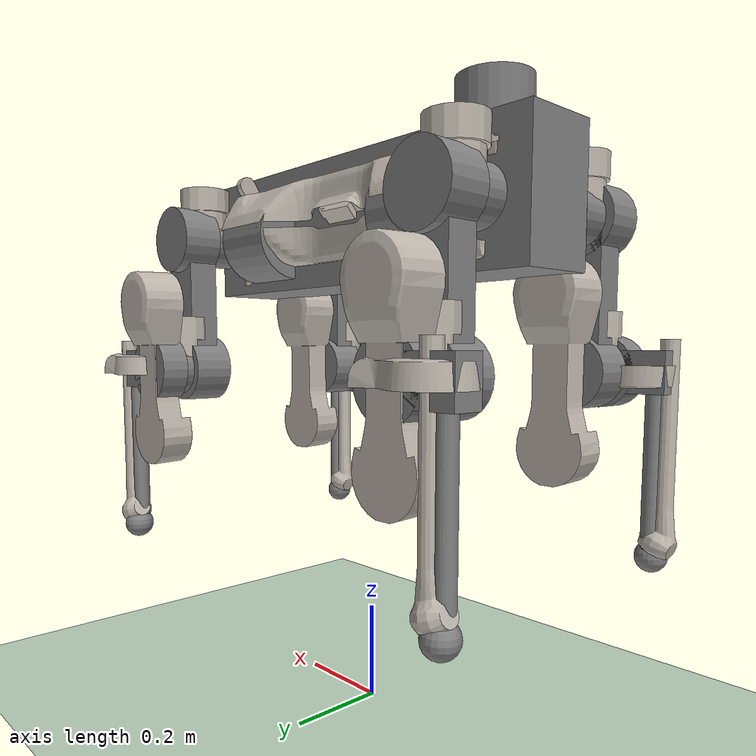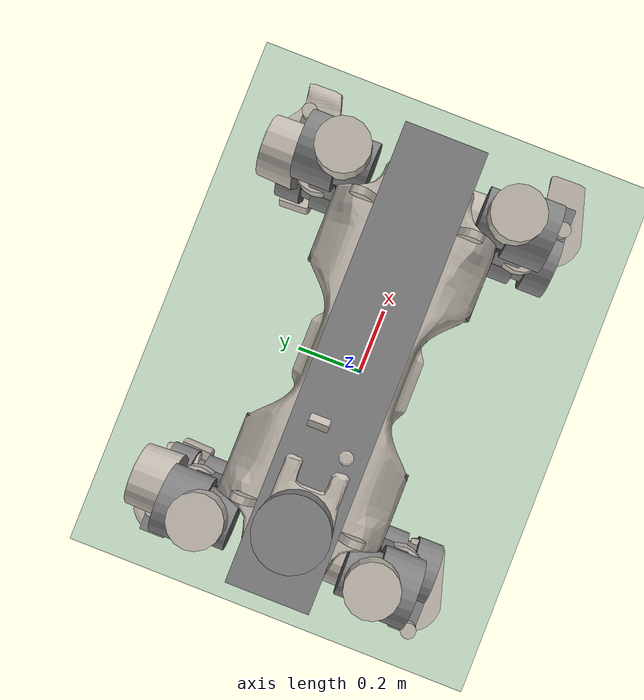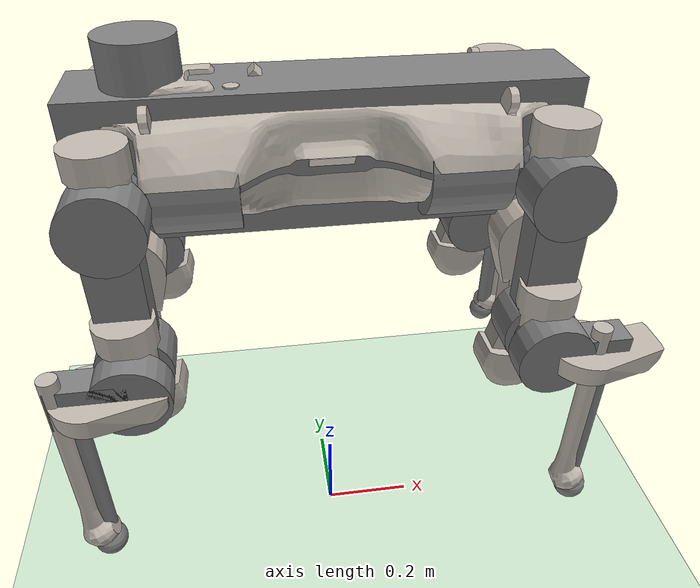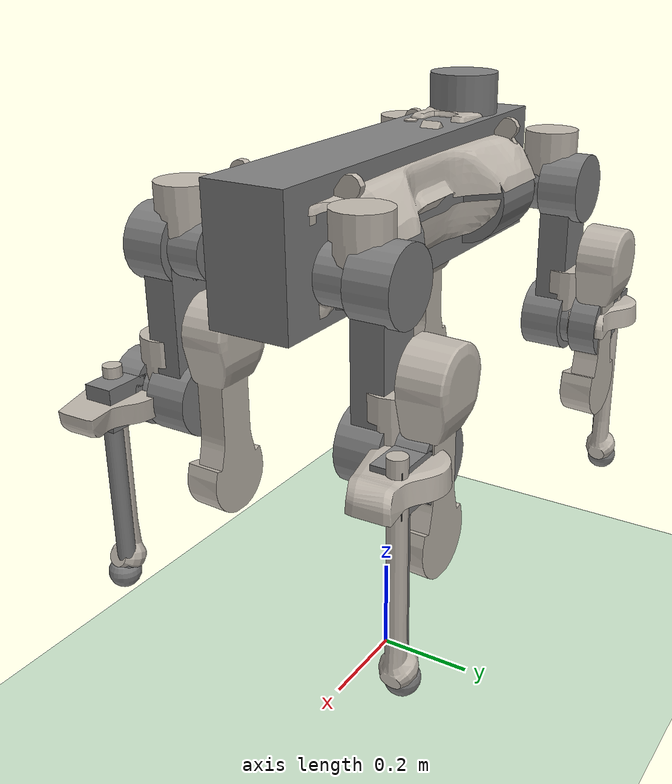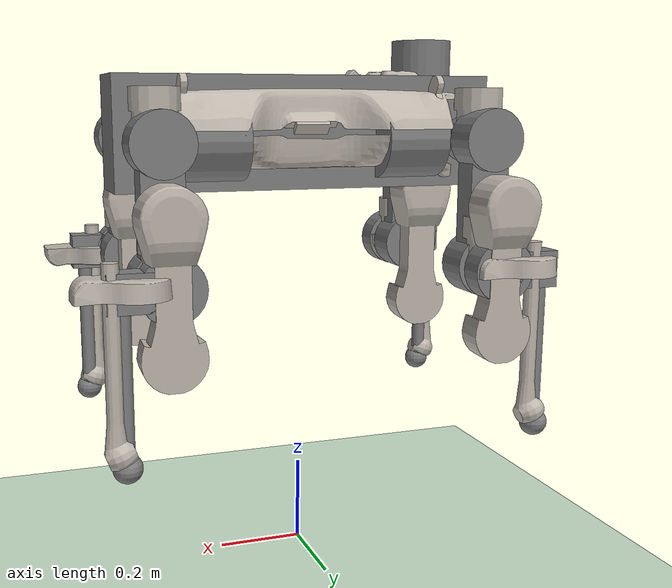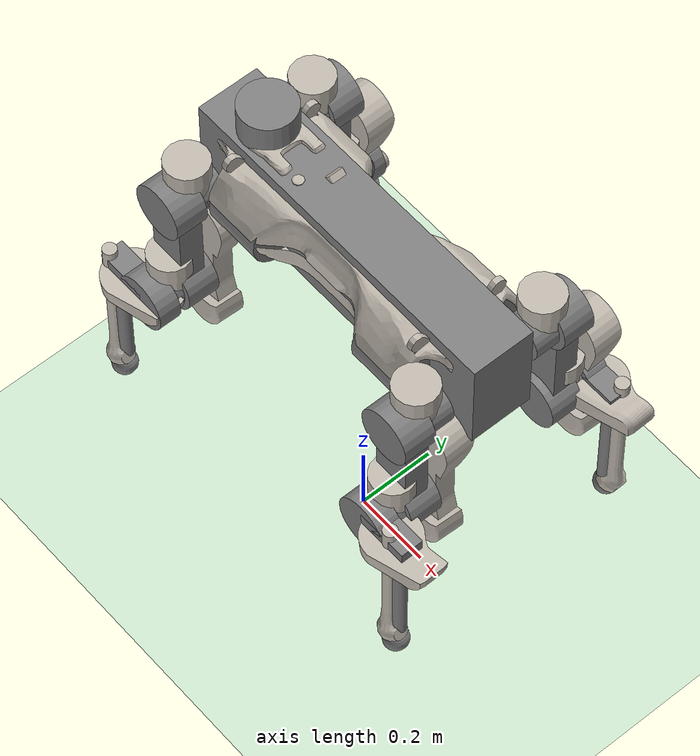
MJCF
<mujoco model="anymal">
    <compiler angle="radian" discardvisual="true" inertiafromgeom="true" meshdir="../assets/meshes_anymal_d/" texturedir="../assets/meshes_anymal_d/"/>

    <size njmax="500" nconmax="100" />
    <asset>
        <texture builtin="checker" height="100" name="texplane" rgb1="0 0 0" rgb2="0.8 0.8 0.8" type="2d" width="100"/>
        <material name="MatPlane" reflectance="0.5" shininess="1" specular="1" texrepeat="60 60" texture="texplane"/>
    </asset>

    <asset>
        <mesh file="top_shell_3_6_0_mesh.stl" name="top_shell" />
        <texture file="top_shell_baked.png" name="tex_top_shell"/>
        <material name="mat_top_shell" reflectance="0.7" texrepeat="1 1" texture="tex_top_shell" texuniform="false"/>
    </asset>

    <asset>
        <mesh file="bottom_shell_3_6_0_mesh.stl" name="bottom_shell" />
        <texture file="bottom_shell_baked.png" name="tex_bottom_shell"/>
        <material name="mat_bottom_shell" reflectance="0.7" texrepeat="1 1" texture="tex_bottom_shell" texuniform="false"/>
    </asset>

    <asset>
        <mesh file="base_3_6_0_mesh.stl" name="base" />
        <texture file="base_baked.png" name="tex_base"/>
        <material name="mat_base" reflectance="0.7" texrepeat="1 1" texture="tex_base" texuniform="false"/>
    </asset>

    <asset>
        <mesh file="hip_3_6_0_mesh.stl" name="hip" />
        <texture file="hip_baked.png" name="tex_hip"/>
        <material name="mat_hip" reflectance="0.7" texrepeat="1 1" texture="tex_hip" texuniform="false"/>
    </asset>

    <asset>
        <mesh file="thigh_3_6_0_mesh.stl" name="thigh" />
        <texture file="thigh_baked.png" name="tex_thigh"/>
        <material name="mat_thigh" reflectance="0.7" texrepeat="1 1" texture="tex_thigh" texuniform="false"/>
    </asset>

    <asset>
        <mesh file="shank_3_6_0_mesh.stl" name="shank" />
        <texture file="shank_baked.png" name="tex_shank"/>
        <material name="mat_shank" reflectance="0.7" texrepeat="1 1" texture="tex_shank" texuniform="false"/>
    </asset>

    <asset>
        <mesh file="shank_3_6_0_mesh_mirrored.stl" name="shank_mirror" />
        <texture file="shank_baked.png" name="tex_shank_mirror"/>
        <material name="mat_shank_mirror" reflectance="0.7" texrepeat="1 1" texture="tex_shank_mirror" texuniform="false"/>
    </asset>

    <asset>
        <mesh file="foot_3_6_1_mesh.stl" name="foot" />
        <texture file="foot_baked.png" name="tex_foot"/>
        <material name="mat_foot" reflectance="0.7" texrepeat="1 1" texture="tex_foot" texuniform="false"/>
    </asset>

    <asset>
        <mesh file="drive_3_2_0_mesh.stl" name="drive" />
        <texture file="drive_baked.png" name="tex_drive"/>
        <material name="mat_drive" reflectance="0.7" texrepeat="1 1" texture="tex_drive" texuniform="false"/>
    </asset>

    <worldbody>
        <light cutoff="100" diffuse="1 1 1" dir="-0 0 -1.3" directional="true" exponent="1" pos="0 0 1.3" specular=".1 .1 .1"/>
        <geom conaffinity="1" condim="3" material="MatPlane" name="floor" pos="0 0 0" rgba="0.8 0.9 0.8 1" size="40 40 40" type="plane"/>
        <body name="base" pos="0 0 1.0">
            <joint armature="0" damping="0" limited="false" name="root" pos="0 0 0" stiffness="0" type="free"/>

            <geom pos="0 0 0.016" type="mesh" mesh="top_shell" material="mat_top_shell"/>
            <geom pos="0 0 0.016" type="mesh" mesh="bottom_shell" material="mat_bottom_shell" />
            <geom pos="0 0 0.016" type="mesh" mesh="base" material="mat_base" />

            <geom size="0.447 0.08075 0.128" pos="0 0 0.016" type="box" contype="0" conaffinity="0"/>
            <geom size="0.089 0.0741" pos="0.2353 0.08075 0" quat="0.707107 0 0.707107 0" type="cylinder" contype="0" conaffinity="0"/>
            <geom size="0.089 0.0741" pos="0.2353 -0.08075 0" quat="0.707107 0 0.707107 0" type="cylinder" contype="0" conaffinity="0"/>
            <geom size="0.089 0.0741" pos="-0.2353 0.08075 0" quat="0.707107 0 0.707107 0" type="cylinder" contype="0" conaffinity="0"/>
            <geom size="0.089 0.0741" pos="-0.2353 -0.08075 0" quat="0.707107 0 0.707107 0" type="cylinder" contype="0" conaffinity="0"/>
            <geom size="0.012 0.012 0.005" pos="0.2488 0.00835 0.05128" quat="0.707107 0 0 0.707107" type="box" contype="0" conaffinity="0"/>
            <geom size="0.07 0.06775" pos="-0.31 0 0.1585" quat="0 0 0 1" type="cylinder" contype="0" conaffinity="0" />

            <body name="LF_HIP" pos="0.304 0.109 0">
                <inertial pos="0.035047 -0.00122677 0" quat="0.502484 0.502593 0.497424 0.497473" mass="0.36586" diaginertia="0.000558279 0.000443321 0.00023849" />
                <joint name="LF_HAA" pos="0 0 0" axis="1 0 0" limited="true" range="-0.785398 0.610865" />
                <body name="LF_THIGH" pos="0.069 0.006 0" quat="0.707107 0 0 -0.707107">
                    <inertial pos="-0.0905113 -8.79548e-05 -0.140188" quat="0.99036 -0.00771405 0.1034 -0.0918509" mass="5.1322" diaginertia="0.109149 0.107919 0.00970372" />
                    <joint name="LF_HFE" pos="0 0 0" axis="-1 0 0" limited="true" range="-9.42478 9.42478" />

                    <geom size="0.05375 0.0595" pos="-0.0595 0 0" quat="0.707107 0 0.707107 0" type="mesh" mesh="drive" material="mat_drive"/>
                    <geom size="0.05375 0.0595" pos="-0.0595 0 0" quat="0.707107 0 0.707107 0" type="cylinder" contype="0" conaffinity="0"/>

                    <geom size="0.07 0.041565" pos="-0.105195 0 0" quat="0.5 0.5 0.5 0.5" type="cylinder" contype="0" conaffinity="0"  />

                    <geom size="0.0465 0.0315 0.1425" pos="-0.09513 0 -0.1425" quat="0.707107 0 0 0.707107" type="mesh" mesh="thigh" material="mat_thigh"/>
                    <geom size="0.0465 0.0315 0.1425" pos="-0.09513 0 -0.1425" quat="0.707107 0 0 0.707107" type="box" contype="0" conaffinity="0"  />

                    <geom size="0.07 0.041565" pos="-0.085065 0 -0.285" quat="0.5 0.5 0.5 0.5" type="cylinder" />

                    <geom size="0.05375 0.0595" pos="-0.121 0 -0.285" quat="0 -0.707107 0 0.707107" type="cylinder" contype="0" conaffinity="0"/>
                    <geom size="0.05375 0.0595" pos="-0.121 0 -0.285" quat="0 -0.707107 0 0.707107" type="mesh" mesh="drive" material="mat_drive"/>

                    <body name="LF_SHANK" pos="-0.1805 0 -0.285" quat="0 0 0 1">
                        <inertial pos="0.00808591 -0.0509335 -0.0900193" quat="0.99296 -0.116018 -0.004155 -0.0235265" mass="0.79598" diaginertia="0.0189142 0.0175029 0.00168996" />
                        <joint name="LF_KFE" pos="0 0 0" axis="1 0 0" limited="true" range="-9.42478 9.42478" />
                        <geom size="0.071 0.02866" quat="0.5 0.5 -0.5 -0.5" type="cylinder" />

                        <geom size="0.066415 0.04151 0.02866" pos="0 -0.066415 0" quat="0.5 0.5 -0.5 -0.5" type="mesh" mesh="shank" material="mat_shank" />
                        <geom size="0.066415 0.04151 0.02866" pos="0 -0.066415 0" quat="0.5 0.5 -0.5 -0.5" type="box" contype="0" conaffinity="0"/>

                        <geom size="0.0175 0.19786" pos="0.00535885 -0.1 -0.164217" quat="0.707107 0 0 -0.707107" type="cylinder" contype="0" conaffinity="0"/>
                        <geom size="0.031455" pos="0.0141088 -0.1 -0.362077" quat="0.707107 0 0 -0.707107" contype="0" conaffinity="0"/>
                        <geom size="0.031455" pos="0.0141088 -0.1 -0.362077" type="mesh" mesh="foot" material="mat_foot" />
                    </body>
                </body>
            </body>
            <body name="RF_HIP" pos="0.304 -0.109 0">
                <inertial pos="0.035047 0.00122677 0" quat="0.497473 0.497424 0.502593 0.502484" mass="0.36586" diaginertia="0.000558279 0.000443321 0.00023849" />
                <joint name="RF_HAA" pos="0 0 0" axis="1 0 0" limited="true" range="-0.610865 0.785398" />
                <body name="RF_THIGH" pos="0.069 -0.006 0" quat="0.707107 0 0 0.707107">
                    <inertial pos="-0.0905113 8.79548e-05 -0.140188" quat="0.986364 0.0124145 0.10293 0.127816" mass="5.1322" diaginertia="0.109194 0.107873 0.00970475" />
                    <joint name="RF_HFE" pos="0 0 0" axis="1 0 0" limited="true" range="-9.42478 9.42478" />

                    <geom size="0.05375 0.0595" pos="-0.0595 0 0" quat="0.707107 0 0.707107 0" type="mesh" mesh="drive" material="mat_drive"/>
                    <geom size="0.05375 0.0595" pos="-0.0595 0 0" quat="0.707107 0 0.707107 0" type="cylinder" contype="0" conaffinity="0"/>

                    <geom size="0.07 0.041565" pos="-0.105195 0 0" quat="0.5 0.5 -0.5 -0.5" type="cylinder" contype="0" conaffinity="0"/>

                    <geom size="0.0465 0.0315 0.1425" pos="-0.09513 0 -0.1425" quat="0.707107 0 0 -0.707107" type="mesh" mesh="thigh" material="mat_thigh"/>
                    <geom size="0.0465 0.0315 0.1425" pos="-0.09513 0 -0.1425" quat="0.707107 0 0 -0.707107" type="box" contype="0" conaffinity="0"/>

                    <geom size="0.07 0.041565" pos="-0.085065 0 -0.285" quat="0.5 0.5 -0.5 -0.5" type="cylinder" />

                    <geom size="0.05375 0.0595" pos="-0.121 0 -0.285" quat="0 0.707107 0 -0.707107" type="mesh" mesh="drive" material="mat_drive" />
                    <geom size="0.05375 0.0595" pos="-0.121 0 -0.285" quat="0 0.707107 0 -0.707107" type="cylinder" contype="0" conaffinity="0"/>

                    <body name="RF_SHANK" pos="-0.1805 0 -0.285" quat="0 0 0 -1">
                        <inertial pos="0.00808591 0.0509335 -0.0900193" quat="0.99296 0.116018 -0.004155 0.0235265" mass="0.79598" diaginertia="0.0189142 0.0175029 0.00168996" />
                        <joint name="RF_KFE" pos="0 0 0" axis="-1 0 0" limited="true" range="-9.42478 9.42478" />
                        <geom size="0.071 0.02866" quat="0.5 0.5 0.5 0.5" type="cylinder" />

                        <geom size="0.066415 0.04151 0.02866" pos="0 0.066415 0" quat="0.5 0.5 0.5 0.5" type="mesh" mesh="shank_mirror" material="mat_shank" />
                        <geom size="0.066415 0.04151 0.02866" pos="0 0.066415 0" quat="0.5 0.5 0.5 0.5" type="box"  contype="0" conaffinity="0"/>

                        <geom size="0.0175 0.19786" pos="0.00535885 0.1 -0.164217" quat="0.707107 0 0 0.707107" type="cylinder" contype="0" conaffinity="0"/>
                        <geom size="0.031455" pos="0.0141088 0.1 -0.362077" quat="0.707107 0 0 0.707107" contype="0" conaffinity="0"/>
                        <geom size="0.031455" pos="0.0141088 0.1 -0.362077"  type="mesh" mesh="foot" material="mat_foot"/>
                    </body>
                </body>
            </body>
            <body name="LH_HIP" pos="-0.304 0.109 0" quat="0 0 0 -1">
                <inertial pos="0.035047 0.00122677 0" quat="0.497473 0.497424 0.502593 0.502484" mass="0.36586" diaginertia="0.000558279 0.000443321 0.00023849" />
                <joint name="LH_HAA" pos="0 0 0" axis="-1 0 0" limited="true" range="-0.785398 0.610865" />
                <body name="LH_THIGH" pos="0.069 -0.006 0" quat="-0.707107 0 0 -0.707107">
                    <inertial pos="-0.0905113 8.79548e-05 -0.140188" quat="0.986364 0.0124145 0.10293 0.127816" mass="5.1322" diaginertia="0.109194 0.107873 0.00970475" />
                    <joint name="LH_HFE" pos="0 0 0" axis="-1 0 0" limited="true" range="-9.42478 9.42478" />

                    <geom size="0.05375 0.0595" pos="-0.0595 0 0" quat="0.707107 0 0.707107 0" type="mesh" mesh="drive" material="mat_drive" />
                    <geom size="0.05375 0.0595" pos="-0.0595 0 0" quat="0.707107 0 0.707107 0" type="cylinder" contype="0" conaffinity="0"/>

                    <geom size="0.07 0.041565" pos="-0.105195 0 0" quat="0.5 0.5 0.5 0.5" type="cylinder" />

                    <geom size="0.0465 0.0315 0.1425" pos="-0.09513 0 -0.1425" quat="0.707107 0 0 0.707107" type="mesh" mesh="thigh" material="mat_thigh"/>
                    <geom size="0.0465 0.0315 0.1425" pos="-0.09513 0 -0.1425" quat="0.707107 0 0 0.707107" type="box" contype="0" conaffinity="0"/>

                    <geom size="0.07 0.041565" pos="-0.085065 0 -0.285" quat="0.5 0.5 0.5 0.5" type="cylinder" />

                    <geom size="0.05375 0.0595" pos="-0.121 0 -0.285" quat="0 -0.707107 0 0.707107" type="mesh" mesh="drive" material="mat_drive" />
                    <geom size="0.05375 0.0595" pos="-0.121 0 -0.285" quat="0 -0.707107 0 0.707107" type="cylinder" contype="0" conaffinity="0"/>

                    <body name="LH_SHANK" pos="-0.1805 0 -0.285" quat="0 0 0 1">
                        <inertial pos="0.00808591 0.0509335 -0.0900193" quat="0.99296 0.116018 -0.004155 0.0235265" mass="0.79598" diaginertia="0.0189142 0.0175029 0.00168996" />
                        <joint name="LH_KFE" pos="0 0 0" axis="1 0 0" limited="true" range="-9.42478 9.42478" />
                        <geom size="0.071 0.02866" quat="0.5 0.5 -0.5 -0.5" type="cylinder" />

                        <geom size="0.066415 0.04151 0.02866" pos="0 0.066415 0" quat="0.5 0.5 -0.5 -0.5" type="mesh" mesh="shank" material="mat_shank" />
                        <geom size="0.066415 0.04151 0.02866" pos="0 0.066415 0" quat="0.5 0.5 -0.5 -0.5" type="box" contype="0" conaffinity="0"/>

                        <geom size="0.0175 0.19786" pos="0.00535885 0.1 -0.164217" quat="0.707107 0 0 -0.707107" type="cylinder" contype="0" conaffinity="0"/>
                        <geom size="0.031455" pos="0.0141088 0.1 -0.362077" quat="0.707107 0 0 -0.707107" contype="0" conaffinity="0"/>
                        <geom size="0.031455" pos="0.0141088 0.1 -0.362077" type="mesh" mesh="foot" material="mat_foot"/>
                    </body>
                </body>
            </body>
            <body name="RH_HIP" pos="-0.304 -0.109 0" quat="0 0 0 -1">
                <inertial pos="0.035047 -0.00122677 0" quat="0.502484 0.502593 0.497424 0.497473" mass="0.36586" diaginertia="0.000558279 0.000443321 0.00023849" />
                <joint name="RH_HAA" pos="0 0 0" axis="-1 0 0" limited="true" range="-0.610865 0.785398" />
                <body name="RH_THIGH" pos="0.069 0.006 0" quat="0.707107 0 0 -0.707107">
                    <inertial pos="-0.0905113 -8.79548e-05 -0.140188" quat="0.99036 -0.00771405 0.1034 -0.0918509" mass="5.1322" diaginertia="0.109149 0.107919 0.00970372" />
                    <joint name="RH_HFE" pos="0 0 0" axis="1 0 0" limited="true" range="-9.42478 9.42478" />

                    <geom size="0.05375 0.0595" pos="-0.0595 0 0" quat="0.707107 0 0.707107 0" type="mesh" mesh="drive" material="mat_drive"/>
                    <geom size="0.05375 0.0595" pos="-0.0595 0 0" quat="0.707107 0 0.707107 0" type="cylinder" contype="0" conaffinity="0"/>

                    <geom size="0.07 0.041565" pos="-0.105195 0 0" quat="0.5 0.5 -0.5 -0.5" type="cylinder" />

                    <geom size="0.0465 0.0315 0.1425" pos="-0.09513 0 -0.1425" quat="0.707107 0 0 -0.707107" type="mesh" mesh="thigh" material="mat_thigh" />
                    <geom size="0.0465 0.0315 0.1425" pos="-0.09513 0 -0.1425" quat="0.707107 0 0 -0.707107" type="box" contype="0" conaffinity="0"/>

                    <geom size="0.07 0.041565" pos="-0.085065 0 -0.285" quat="0.5 0.5 -0.5 -0.5" type="cylinder" />

                    <geom size="0.05375 0.0595" pos="-0.121 0 -0.285" quat="0 0.707107 0 -0.707107" type="mesh" mesh="drive" material="mat_drive"/>
                    <geom size="0.05375 0.0595" pos="-0.121 0 -0.285" quat="0 0.707107 0 -0.707107" type="cylinder" contype="0" conaffinity="0"/>

                    <body name="RH_SHANK" pos="-0.1805 0 -0.285" quat="0 0 0 -1">
                        <inertial pos="0.00808591 -0.0509335 -0.0900193" quat="0.99296 -0.116018 -0.004155 -0.0235265" mass="0.79598" diaginertia="0.0189142 0.0175029 0.00168996" />
                        <joint name="RH_KFE" pos="0 0 0" axis="-1 0 0" limited="true" range="-9.42478 9.42478" />
                        <geom size="0.071 0.02866" quat="0.5 0.5 0.5 0.5" type="cylinder" />

                        <geom size="0.066415 0.04151 0.02866" pos="0 -0.066415 0" quat="0.5 0.5 0.5 0.5" type="mesh" mesh="shank_mirror" material="mat_shank"  />
                        <geom size="0.066415 0.04151 0.02866" pos="0 -0.066415 0" quat="0.5 0.5 0.5 0.5" type="box" contype="0" conaffinity="0"/>

                        <geom size="0.0175 0.19786" pos="0.00535885 -0.1 -0.164217" quat="0.707107 0 0 0.707107" type="cylinder" contype="0" conaffinity="0"/>
                        <geom size="0.031455" pos="0.0141088 -0.1 -0.362077" quat="0.707107 0 0 0.707107" contype="0" conaffinity="0"/>
                        <geom size="0.031455" pos="0.0141088 -0.1 -0.362077" type="mesh" mesh="foot" material="mat_foot"/>
                    </body>
                </body>
            </body>
        </body>
    </worldbody>
</mujoco>
